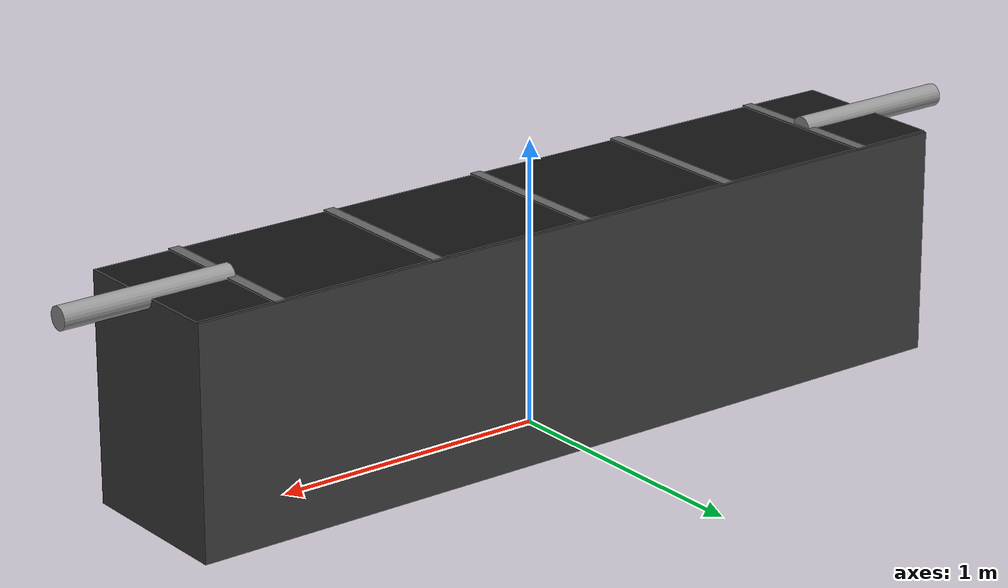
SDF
<?xml version="1.0"?>
<sdf version="1.7">
  <model name="conveyor_belt">
    <static>true</static>
    <link name="link">
      <!-- Main body -->
      <collision name="body_col"><pose>0 0 0.4 0 0 0</pose><geometry><box><size>3.0 0.6 0.8</size></box></geometry></collision>
      <visual name="body">
        <pose>0 0 0.4 0 0 0</pose>
        <geometry><box><size>3.0 0.6 0.8</size></box></geometry>
        <material><ambient>0.25 0.25 0.25 1</ambient><diffuse>0.25 0.25 0.25 1</diffuse></material>
      </visual>

      <!-- Belt surface (dark rubber look) -->
      <visual name="belt_surface">
        <pose>0 0 0.802 0 0 0</pose>
        <geometry><box><size>3.0 0.58 0.004</size></box></geometry>
        <material><ambient>0.08 0.08 0.08 1</ambient><diffuse>0.08 0.08 0.08 1</diffuse></material>
      </visual>

      <!-- Belt rib strips (grey) -->
      <visual name="rib_0"><pose>-1.2 0 0.805 0 0 0</pose><geometry><box><size>0.04 0.60 0.005</size></box></geometry><material><ambient>0.4 0.4 0.4 1</ambient></material></visual>
      <visual name="rib_1"><pose>-0.6 0 0.805 0 0 0</pose><geometry><box><size>0.04 0.60 0.005</size></box></geometry><material><ambient>0.4 0.4 0.4 1</ambient></material></visual>
      <visual name="rib_2"><pose> 0.0 0 0.805 0 0 0</pose><geometry><box><size>0.04 0.60 0.005</size></box></geometry><material><ambient>0.4 0.4 0.4 1</ambient></material></visual>
      <visual name="rib_3"><pose> 0.6 0 0.805 0 0 0</pose><geometry><box><size>0.04 0.60 0.005</size></box></geometry><material><ambient>0.4 0.4 0.4 1</ambient></material></visual>
      <visual name="rib_4"><pose> 1.2 0 0.805 0 0 0</pose><geometry><box><size>0.04 0.60 0.005</size></box></geometry><material><ambient>0.4 0.4 0.4 1</ambient></material></visual>

      <!-- End rollers -->
      <visual name="roller_front">
        <pose>1.5 0 0.80 0 1.5708 0</pose>
        <geometry><cylinder><radius>0.04</radius><length>0.62</length></cylinder></geometry>
        <material><ambient>0.6 0.6 0.6 1</ambient></material>
      </visual>
      <visual name="roller_rear">
        <pose>-1.5 0 0.80 0 1.5708 0</pose>
        <geometry><cylinder><radius>0.04</radius><length>0.62</length></cylinder></geometry>
        <material><ambient>0.6 0.6 0.6 1</ambient></material>
      </visual>

      <!-- Legs -->
      <collision name="leg_fl"><pose>-1.35  0.25 0.2 0 0 0</pose><geometry><box><size>0.06 0.06 0.4</size></box></geometry></collision>
      <visual name="leg_fl"><pose>-1.35  0.25 0.2 0 0 0</pose><geometry><box><size>0.06 0.06 0.4</size></box></geometry><material><ambient>0.3 0.3 0.3 1</ambient></material></visual>
      <collision name="leg_fr"><pose>-1.35 -0.25 0.2 0 0 0</pose><geometry><box><size>0.06 0.06 0.4</size></box></geometry></collision>
      <visual name="leg_fr"><pose>-1.35 -0.25 0.2 0 0 0</pose><geometry><box><size>0.06 0.06 0.4</size></box></geometry><material><ambient>0.3 0.3 0.3 1</ambient></material></visual>
      <collision name="leg_bl"><pose> 1.35  0.25 0.2 0 0 0</pose><geometry><box><size>0.06 0.06 0.4</size></box></geometry></collision>
      <visual name="leg_bl"><pose> 1.35  0.25 0.2 0 0 0</pose><geometry><box><size>0.06 0.06 0.4</size></box></geometry><material><ambient>0.3 0.3 0.3 1</ambient></material></visual>
      <collision name="leg_br"><pose> 1.35 -0.25 0.2 0 0 0</pose><geometry><box><size>0.06 0.06 0.4</size></box></geometry></collision>
      <visual name="leg_br"><pose> 1.35 -0.25 0.2 0 0 0</pose><geometry><box><size>0.06 0.06 0.4</size></box></geometry><material><ambient>0.3 0.3 0.3 1</ambient></material></visual>
    </link>
  </model>
</sdf>
